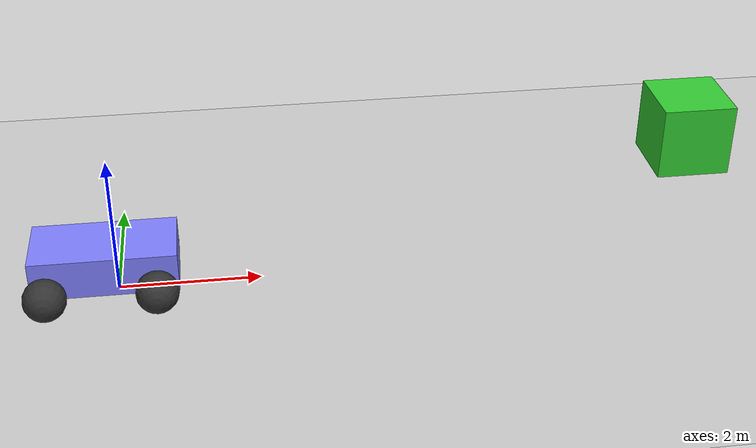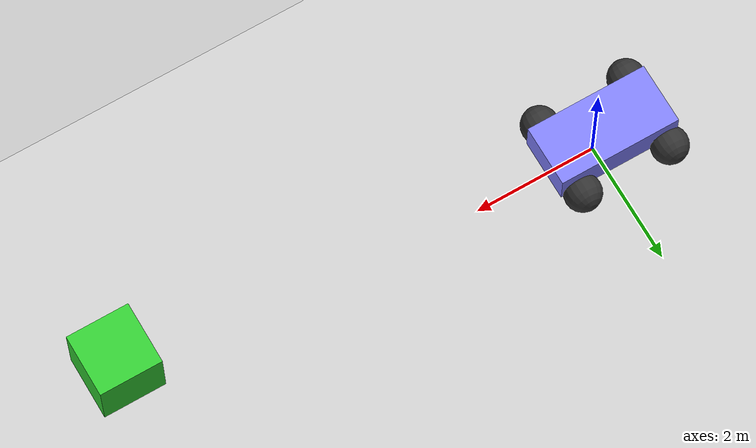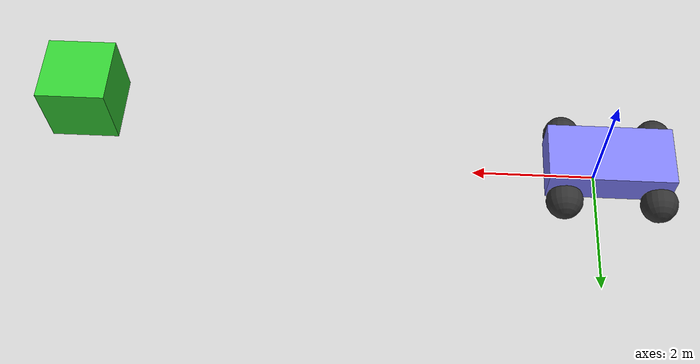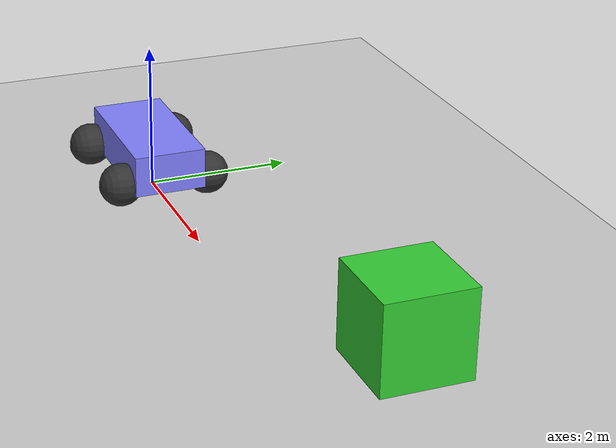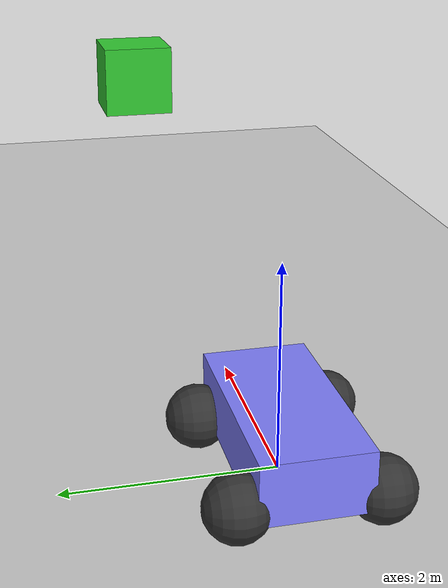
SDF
<?xml version="1.0" ?>
<sdf version="1.6">
  <world name="triggered_publisher">

    <physics name="1ms" type="ignored">
      <max_step_size>0.001</max_step_size>
      <real_time_factor>1.0</real_time_factor>
    </physics>
    <plugin
      filename="ignition-gazebo-physics-system"
      name="ignition::gazebo::systems::Physics">
    </plugin>
    <plugin
      filename="ignition-gazebo-contact-system"
      name="ignition::gazebo::systems::Contact">
    </plugin>
    <plugin
      filename="ignition-gazebo-user-commands-system"
      name="ignition::gazebo::systems::UserCommands">
    </plugin>
    <plugin
      filename="ignition-gazebo-scene-broadcaster-system"
      name="ignition::gazebo::systems::SceneBroadcaster">
    </plugin>
    <plugin
      filename="ignition-gazebo-altimeter-system"
      name="ignition::gazebo::systems::Altimeter">
    </plugin>

    <gui fullscreen="0">

      <!-- 3D scene -->
      <plugin filename="GzScene3D" name="3D View">
        <ignition-gui>
          <title>3D View</title>
          <property type="bool" key="showTitleBar">false</property>
          <property type="string" key="state">docked</property>
        </ignition-gui>

        <engine>ogre2</engine>
        <scene>scene</scene>
        <ambient_light>0.4 0.4 0.4</ambient_light>
        <background_color>0.8 0.8 0.8</background_color>
        <camera_pose>3 -9 9 0 0.6 1.3</camera_pose>
      </plugin>

      <!-- World control -->
      <plugin filename="WorldControl" name="World control">
        <ignition-gui>
          <title>World control</title>
          <property type="bool" key="showTitleBar">false</property>
          <property type="bool" key="resizable">false</property>
          <property type="double" key="height">72</property>
          <property type="double" key="width">121</property>
          <property type="double" key="z">1</property>

          <property type="string" key="state">floating</property>
          <anchors target="3D View">
            <line own="left" target="left"/>
            <line own="bottom" target="bottom"/>
          </anchors>
        </ignition-gui>

        <play_pause>true</play_pause>
        <step>true</step>
        <start_paused>true</start_paused>

      </plugin>

      <!-- World statistics -->
      <plugin filename="WorldStats" name="World stats">
        <ignition-gui>
          <title>World stats</title>
          <property type="bool" key="showTitleBar">false</property>
          <property type="bool" key="resizable">false</property>
          <property type="double" key="height">110</property>
          <property type="double" key="width">290</property>
          <property type="double" key="z">1</property>

          <property type="string" key="state">floating</property>
          <anchors target="3D View">
            <line own="right" target="right"/>
            <line own="bottom" target="bottom"/>
          </anchors>
        </ignition-gui>

        <sim_time>true</sim_time>
        <real_time>true</real_time>
        <real_time_factor>true</real_time_factor>
        <iterations>true</iterations>

      </plugin>

    </gui>

    <light type="directional" name="sun">
      <cast_shadows>true</cast_shadows>
      <pose>0 0 10 0 0 0</pose>
      <diffuse>1 1 1 1</diffuse>
      <specular>0.5 0.5 0.5 1</specular>
      <attenuation>
        <range>1000</range>
        <constant>0.9</constant>
        <linear>0.01</linear>
        <quadratic>0.001</quadratic>
      </attenuation>
      <direction>0.05 -0.1 -0.9</direction>
    </light>

    <model name="ground_plane">
      <static>true</static>
      <link name="link">
        <collision name="collision">
          <geometry>
            <plane>
              <normal>0 0 1</normal>
              <size>100 100</size>
            </plane>
          </geometry>
        </collision>
        <visual name="visual">
          <geometry>
            <plane>
              <normal>0 0 1</normal>
              <size>100 100</size>
            </plane>
          </geometry>
          <material>
            <ambient>0.8 0.8 0.8 1</ambient>
            <diffuse>0.8 0.8 0.8 1</diffuse>
            <specular>0.8 0.8 0.8 1</specular>
          </material>
        </visual>
      </link>
    </model>

    <model name='vehicle_blue'>
<pose>0 0 0.326 0 0 0</pose>
      <link name='chassis'>
        <pose>-0.151427 -0 0.175 0 -0 0</pose>
        <inertial>
          <mass>1.14395</mass>
          <inertia>
            <ixx>0.126164</ixx>
            <ixy>0</ixy>
            <ixz>0</ixz>
            <iyy>0.416519</iyy>
            <iyz>0</iyz>
            <izz>0.481014</izz>
          </inertia>
        </inertial>
        <visual name='visual'>
          <geometry>
            <box>
              <size>2.01142 1 0.568726</size>
            </box>
          </geometry>
          <material>
            <ambient>0.5 0.5 1.0 1</ambient>
            <diffuse>0.5 0.5 1.0 1</diffuse>
            <specular>0.0 0.0 1.0 1</specular>
          </material>
        </visual>
        <collision name='collision'>
          <geometry>
            <box>
              <size>2.01142 1 0.568726</size>
            </box>
          </geometry>
        </collision>

        <sensor name='sensor_contact' type='contact'>
            <contact>
              <collision>collision</collision>
              <topic>/AttacherContact/contact</topic>
            </contact>
          </sensor>
      </link>

      <link name='front_left_wheel'>
        <pose>0.554283 0.625029 -0.025 -1.5707 0 0</pose>
        <inertial>
          <mass>2</mass>
          <inertia>
            <ixx>0.145833</ixx>
            <ixy>0</ixy>
            <ixz>0</ixz>
            <iyy>0.145833</iyy>
            <iyz>0</iyz>
            <izz>0.125</izz>
          </inertia>
        </inertial>
        <visual name='visual'>
          <geometry>
            <sphere>
              <radius>0.3</radius>
            </sphere>
          </geometry>
          <material>
            <ambient>0.2 0.2 0.2 1</ambient>
            <diffuse>0.2 0.2 0.2 1</diffuse>
            <specular>0.2 0.2 0.2 1</specular>
          </material>
        </visual>
        <collision name='collision'>
          <geometry>
            <sphere>
              <radius>0.3</radius>
            </sphere>
          </geometry>
          <surface>
            <friction>
              <ode>
                <mu>1</mu>
                <mu2>1</mu2>
                <slip1>0.035</slip1>
                <slip2>0</slip2>
                <fdir1>0 0 1</fdir1>
              </ode>
            </friction>
          </surface>
        </collision>
      </link>

      <link name='rear_left_wheel'>
        <pose>-0.957138 0.625029 -0.025 -1.5707 0 0</pose>
        <inertial>
          <mass>2</mass>
          <inertia>
            <ixx>0.145833</ixx>
            <ixy>0</ixy>
            <ixz>0</ixz>
            <iyy>0.145833</iyy>
            <iyz>0</iyz>
            <izz>0.125</izz>
          </inertia>
        </inertial>
        <visual name='visual'>
          <geometry>
            <sphere>
              <radius>0.3</radius>
            </sphere>
          </geometry>
          <material>
            <ambient>0.2 0.2 0.2 1</ambient>
            <diffuse>0.2 0.2 0.2 1</diffuse>
            <specular>0.2 0.2 0.2 1</specular>
          </material>
        </visual>
        <collision name='collision'>
          <geometry>
            <sphere>
              <radius>0.3</radius>
            </sphere>
          </geometry>
          <surface>
            <friction>
              <ode>
                <mu>1</mu>
                <mu2>1</mu2>
                <slip1>0.035</slip1>
                <slip2>0</slip2>
                <fdir1>0 0 1</fdir1>
              </ode>
            </friction>
          </surface>
        </collision>
      </link>

      <link name='front_right_wheel'>
        <pose>0.554282 -0.625029 -0.025 -1.5707 0 0</pose>
        <inertial>
          <mass>2</mass>
          <inertia>
            <ixx>0.145833</ixx>
            <ixy>0</ixy>
            <ixz>0</ixz>
            <iyy>0.145833</iyy>
            <iyz>0</iyz>
            <izz>0.125</izz>
          </inertia>
        </inertial>
        <visual name='visual'>
          <geometry>
            <sphere>
              <radius>0.3</radius>
            </sphere>
          </geometry>
          <material>
            <ambient>0.2 0.2 0.2 1</ambient>
            <diffuse>0.2 0.2 0.2 1</diffuse>
            <specular>0.2 0.2 0.2 1</specular>
          </material>
        </visual>
        <collision name='collision'>
          <geometry>
            <sphere>
              <radius>0.3</radius>
            </sphere>
          </geometry>
          <surface>
            <friction>
              <ode>
                <mu>1</mu>
                <mu2>1</mu2>
                <slip1>0.035</slip1>
                <slip2>0</slip2>
                <fdir1>0 0 1</fdir1>
              </ode>
            </friction>
          </surface>
        </collision>
      </link>

      <link name='rear_right_wheel'>
        <pose>-0.957138 -0.625029 -0.025 -1.5707 0 0</pose>
        <inertial>
          <mass>2</mass>
          <inertia>
            <ixx>0.145833</ixx>
            <ixy>0</ixy>
            <ixz>0</ixz>
            <iyy>0.145833</iyy>
            <iyz>0</iyz>
            <izz>0.125</izz>
          </inertia>
        </inertial>
        <visual name='visual'>
          <geometry>
            <sphere>
              <radius>0.3</radius>
            </sphere>
          </geometry>
          <material>
            <ambient>0.2 0.2 0.2 1</ambient>
            <diffuse>0.2 0.2 0.2 1</diffuse>
            <specular>0.2 0.2 0.2 1</specular>
          </material>
        </visual>
        <collision name='collision'>
          <geometry>
            <sphere>
              <radius>0.3</radius>
            </sphere>
          </geometry>
          <surface>
            <friction>
              <ode>
                <mu>1</mu>
                <mu2>1</mu2>
                <slip1>0.035</slip1>
                <slip2>0</slip2>
                <fdir1>0 0 1</fdir1>
              </ode>
            </friction>
          </surface>
        </collision>
      </link>

      <joint name='front_left_wheel_joint' type='revolute'>
        <parent>chassis</parent>
        <child>front_left_wheel</child>
        <axis>
          <xyz>0 0 1</xyz>
          <limit>
            <lower>-1.79769e+308</lower>
            <upper>1.79769e+308</upper>
          </limit>
        </axis>
      </joint>

      <joint name='front_right_wheel_joint' type='revolute'>
        <parent>chassis</parent>
        <child>front_right_wheel</child>
        <axis>
          <xyz>0 0 1</xyz>
          <limit>
            <lower>-1.79769e+308</lower>
            <upper>1.79769e+308</upper>
          </limit>
        </axis>
      </joint>

      <joint name='rear_left_wheel_joint' type='revolute'>
        <parent>chassis</parent>
        <child>rear_left_wheel</child>
        <axis>
          <xyz>0 0 1</xyz>
          <limit>
            <lower>-1.79769e+308</lower>
            <upper>1.79769e+308</upper>
          </limit>
        </axis>
      </joint>

      <joint name='rear_right_wheel_joint' type='revolute'>
        <parent>chassis</parent>
        <child>rear_right_wheel</child>
        <axis>
          <xyz>0 0 1</xyz>
          <limit>
            <lower>-1.79769e+308</lower>
            <upper>1.79769e+308</upper>
          </limit>
        </axis>
      </joint>

      <plugin
      filename="libignition-gazebo-diff-drive-system.so" name="ignition::gazebo::systems::DiffDrive">
        <left_joint>front_left_wheel_joint</left_joint>
        <left_joint>rear_left_wheel_joint</left_joint>
        <right_joint>front_right_wheel_joint</right_joint>
        <right_joint>rear_right_wheel_joint</right_joint>
        <wheel_separation>1.25</wheel_separation>
        <wheel_radius>0.3</wheel_radius>
        <odom_publish_frequency>1000</odom_publish_frequency>
        <topic>/cmd_vel</topic>
        <frame_id>odom</frame_id>
        <child_frame_id>chassis</child_frame_id>
      </plugin>

    </model>

    <model name="box2">
      <pose>8 0 2 0 0 0</pose>
      <link name="box_body">
        <visual name="v1">
          <geometry>
            <box><size>1 1 1</size></box>
          </geometry>
          <material>
            <diffuse>0.2 0.8 0.2 1</diffuse>
            <specular>1.0 0 0 1</specular>
          </material>
        </visual>
        <collision name="c1">
          <geometry>
            <box><size>1 1 1</size></box>
          </geometry>
        </collision>
      </link>
    </model>

    <plugin filename="libAttacherContact.so"
    name="attacher_contact::AttacherContact">
              <time>0.001</time>
          <enabled>true</enabled>
  </plugin>

  <plugin filename="libAttachableJoint.so"
  name="attachable_joint::AttachableJoint">
</plugin>

</world>
</sdf>
